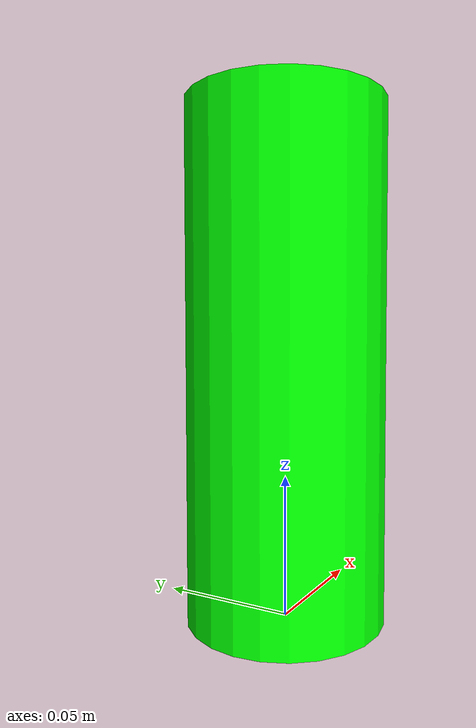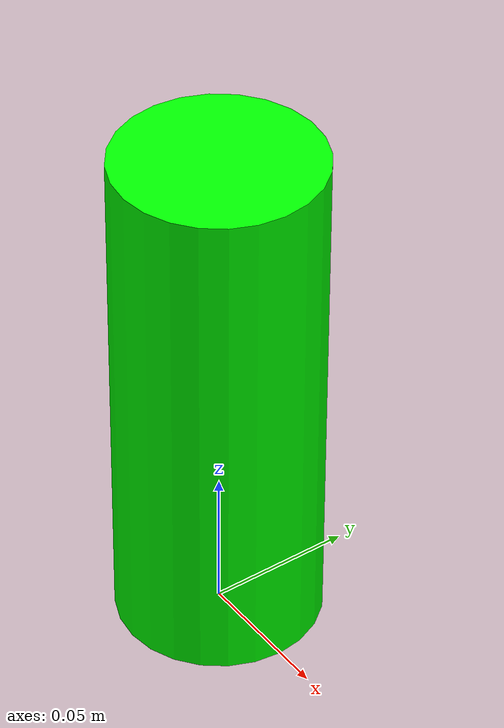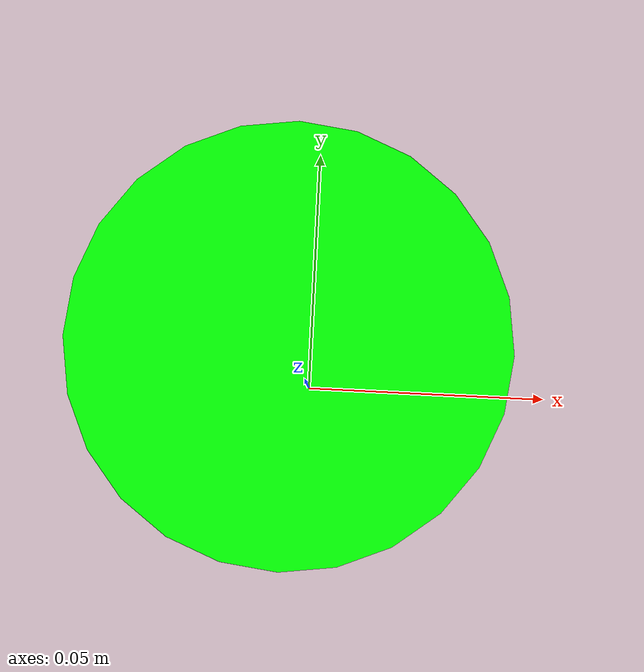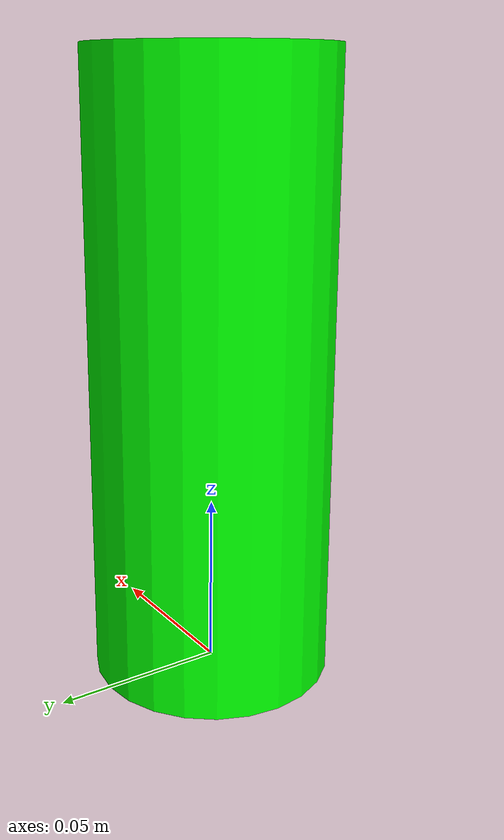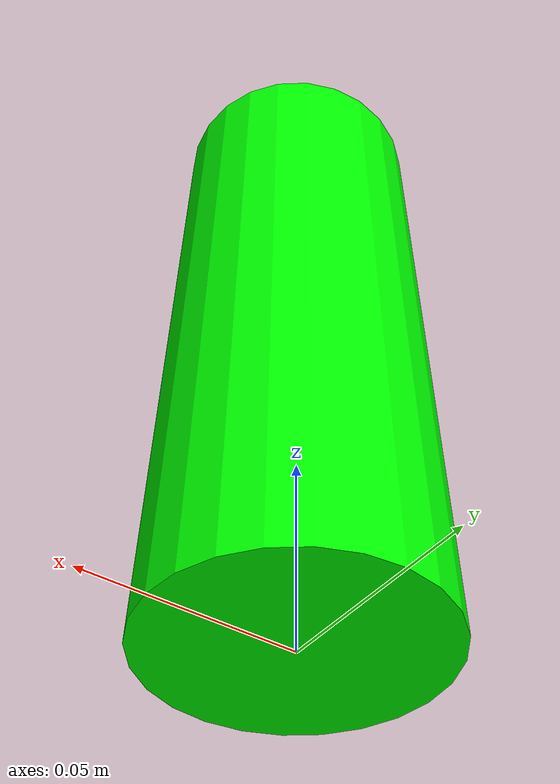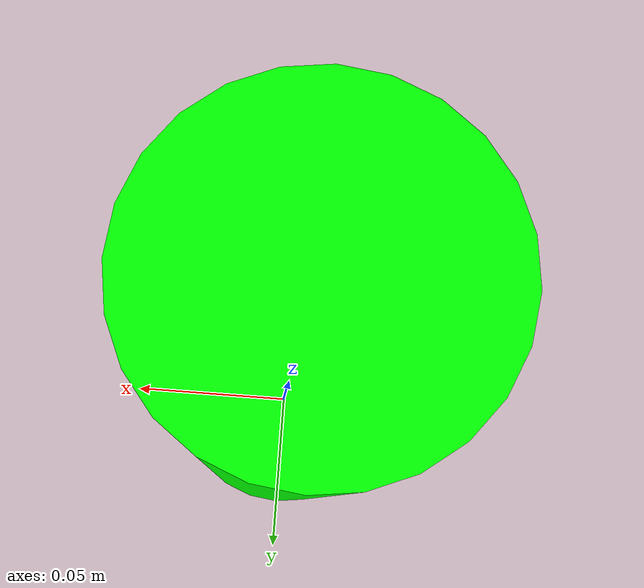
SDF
<?xml version="1.0" ?>
<sdf version="1.5">
  <model name="ra_cylinder_large">
    <static>false</static>
    <link name="link">
      <inertial>
        <mass>0.2</mass>
        <pose> 0 0 0   0 0 0</pose>
        <inertia>
          <ixx>5.6e-4</ixx>
          <iyy>5.6e-4</iyy>
          <izz>4.083e-5</izz>
          <ixy>0</ixy>
          <ixz>0</ixz>
          <iyz>0</iyz>
        </inertia>
      </inertial>
      <collision name="collision">
        <pose>0 0 0.09   0 0 0</pose>
        <geometry>
          <cylinder>
            <length>0.18 </length>
            <radius>0.035</radius>
          </cylinder>
        </geometry>
      </collision>
      <visual name="visual">
        <pose>0 0 0.09   0 0 0</pose>
        <geometry>
          <cylinder>
            <length>0.18 </length>
            <radius>0.035</radius>
          </cylinder>
        </geometry>
        <material>
          <ambient>0 1 0 1</ambient>
          <diffuse>0 1 0 1</diffuse>
          <specular>0.1 0.1 0.1 1</specular>
        </material>
      </visual>
    </link>
  </model>
</sdf>
